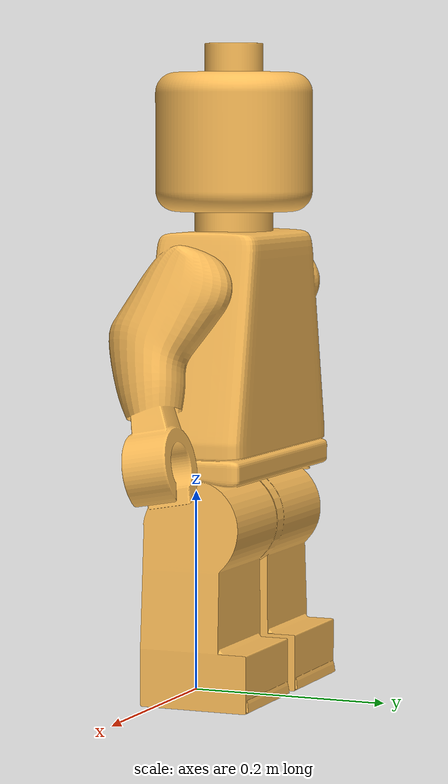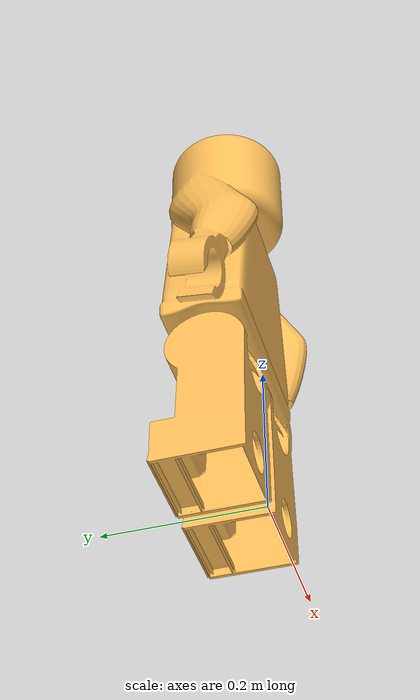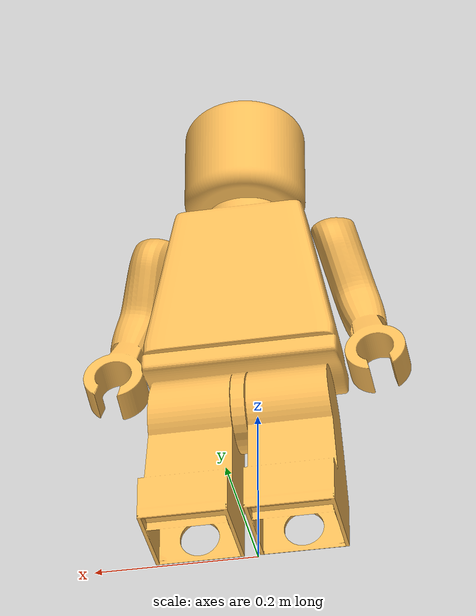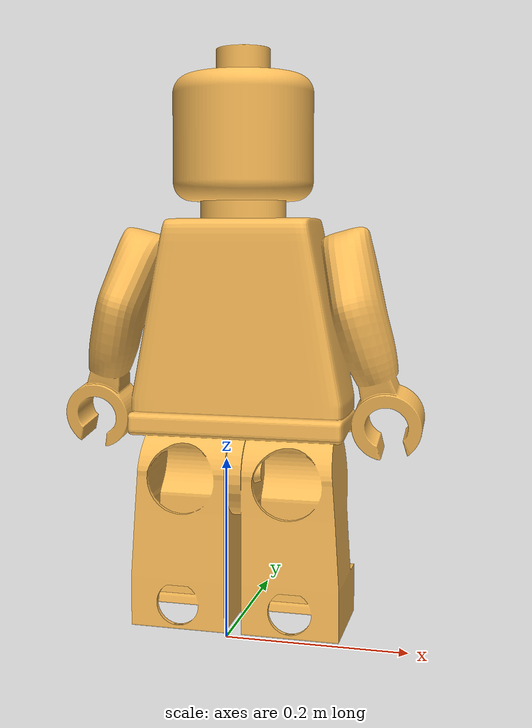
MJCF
<mujoco>
    <asset>
        <mesh file="meshes/lego.stl" name="lego_mesh" scale="0.01 0.01 0.01"/>
        <material name="lego" reflectance="0.7"/>
    </asset>
    <worldbody>
        <body name="visual">
            <geom pos="0.3 0.0 0.0" quat="0 0 0.7071068 0.7071068" mesh="lego_mesh" type="mesh" rgba="1 0.75 0.35 1" material="lego"/>
        </body>
    </worldbody>
</mujoco>
